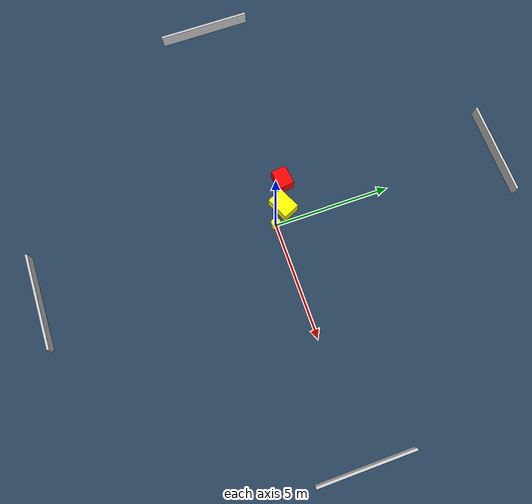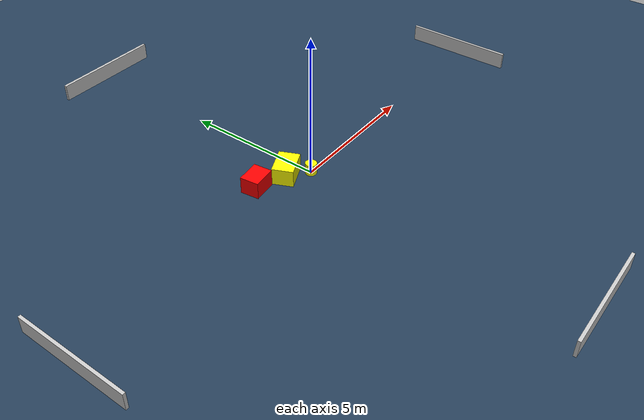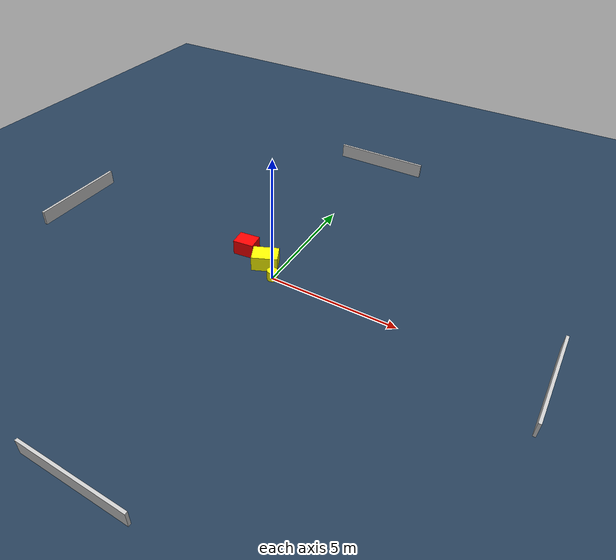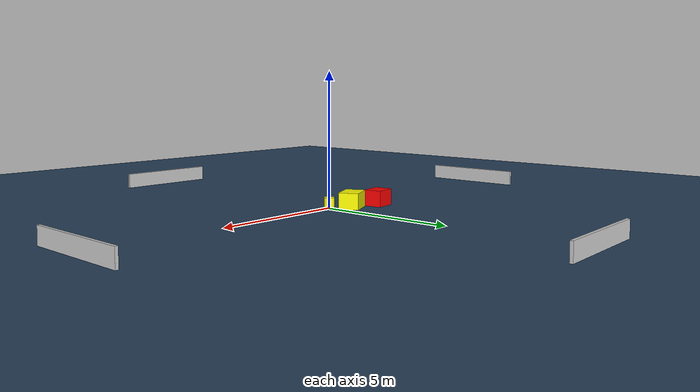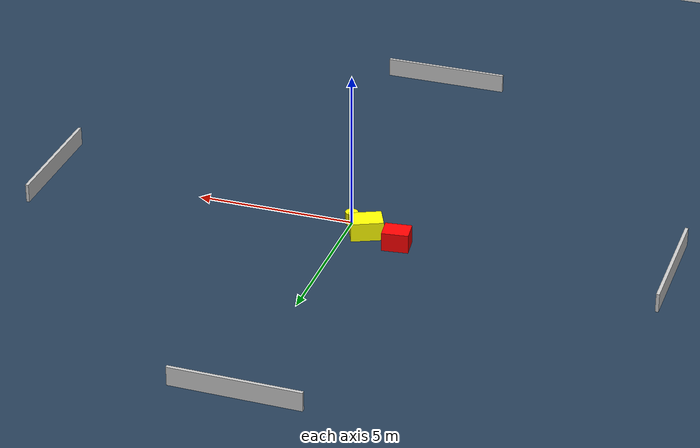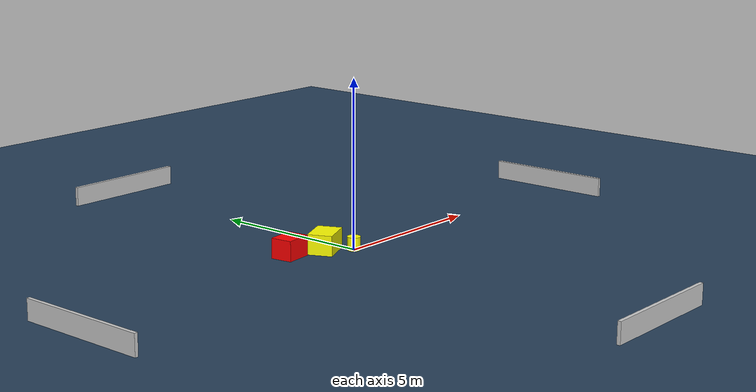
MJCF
<?xml version="1.0" ?>
<mujoco model="generated_environment">
  <option timestep="0.01" integrator="RK4" cone="elliptic"/>
  <default>
    <geom density="1"/>
  </default>
  <asset>
    <texture builtin="gradient" height="3072" name="skybox" rgb1="0.3 0.5 0.7" rgb2="0 0 0" type="skybox" width="512"/>
    <texture builtin="checker" height="300" name="groundplane" rgb1="0.2 0.3 0.4" rgb2="0.1 0.2 0.3" type="2d" width="300"/>
    <material name="groundplane" reflectance="0.2" texrepeat="5 5" texture="groundplane"/>
  </asset>
  <worldbody>
    <light dir="0 0 -1" directional="true" pos="0 0 1.5"/>
    <geom condim="3" friction="0.5 0.005 0.001" material="groundplane" name="floor" pos="0 0 0" size="0 0 0.05" type="plane"/>
    <body name="walls">
      <geom name="wall_1" condim="4" pos="-10.0 0.0 0.3" rgba="0.800000011920929 0.800000011920929 0.800000011920929 1.0" size="0.05 2.0 0.3" type="box"/>
      <geom name="wall_2" condim="4" pos="10.0 0.0 0.3" rgba="0.800000011920929 0.800000011920929 0.800000011920929 1.0" size="0.05 2.0 0.3" type="box"/>
      <geom name="wall_3" condim="4" pos="0.0 -10.0 0.3" rgba="0.800000011920929 0.800000011920929 0.800000011920929 1.0" size="2.0 0.05 0.3" type="box"/>
      <geom name="wall_4" condim="4" pos="0.0 10.0 0.3" rgba="0.800000011920929 0.800000011920929 0.800000011920929 1.0" size="2.0 0.05 0.3" type="box"/>
    </body>
    <body name="robot">
      <joint name="joint_x" type="slide" pos="0 0 0" axis="1 0 0"/>
      <joint name="joint_y" type="slide" pos="0 0 0" axis="0 1 0"/>
      <geom name="robot" type="cylinder" pos="0.0 0.0 0.2" size="0.2 0.2 0.0" mass="5.0" friction="1.0 0.005 0.0001" condim="4" rgba="1.0 1.0 0.0 1.0"/>
    </body>
    <body name="obstacle_1_movable">
      <geom name="obstacle_1_movable" condim="4" pos="-0.6447110252851658 0.5421676866330436 0.3" euler="0 0 204.43408865600247" friction="0.0 0.005 0.001" rgba="1.0 1.0 0.0 1.0" size="0.5029736602579726 0.3657897832383895 0.3" type="box" mass="0.1"/>
      <joint type="free"/>
    </body>
    <body name="obstacle_2_static">
      <geom name="obstacle_2_static" condim="4" pos="-1.736508251888093 0.9015633023841015 0.3" euler="0 0 96.96300869665893" friction="0.0 0.005 0.001" rgba="1.0 0.0 0.0 1.0" size="0.32851672723315684 0.4137821490106012 0.3" type="box"/>
    </body>
  </worldbody>
  <actuator>
    <motor name="actuator_x" joint="joint_x" gear="1" ctrlrange="-1 1"/>
    <motor name="actuator_y" joint="joint_y" gear="1" ctrlrange="-1 1"/>
  </actuator>
</mujoco>
